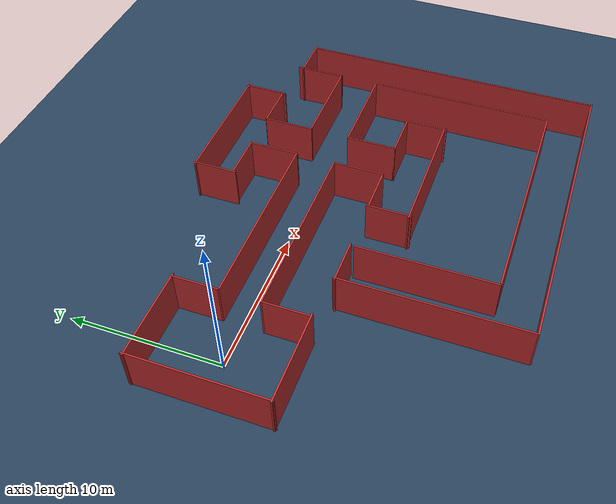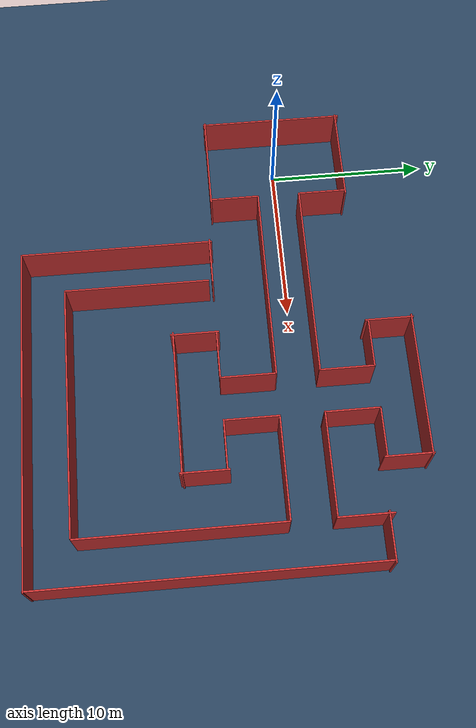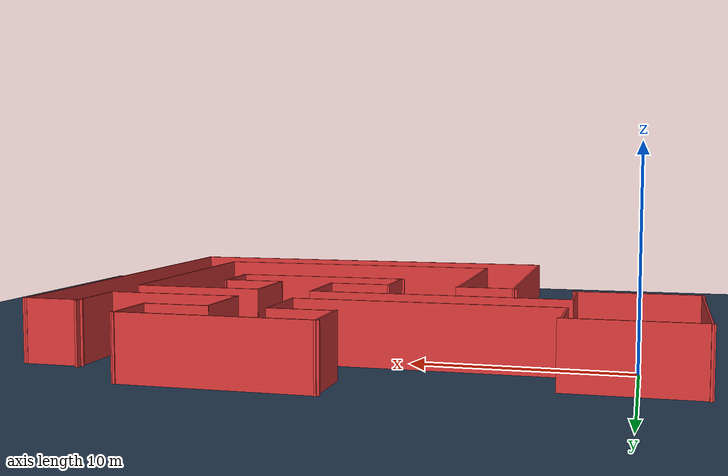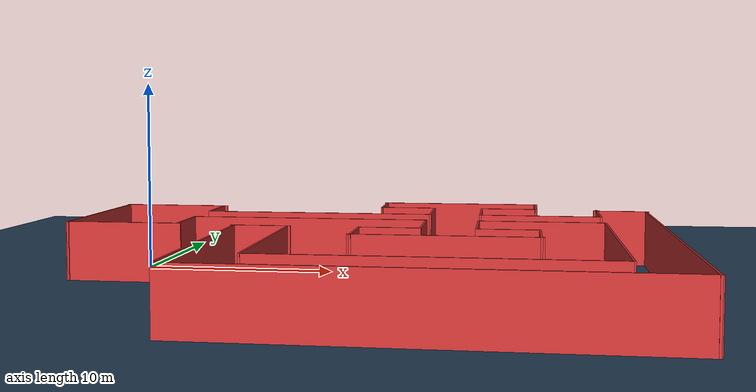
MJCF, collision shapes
<mujoco model="go2 scene">
  <include file="go2.xml" />
  <statistic center="0 0 0.1" extent="0.8" />
  <visual>
    <headlight diffuse="0.6 0.6 0.6" ambient="0.3 0.3 0.3" specular="0 0 0" />
    <rgba haze="0.15 0.25 0.35 1" />
    <global azimuth="-130" elevation="-20" />
    <map znear="0.01" zfar="100"/>
  </visual>
  <asset>
    <texture type="skybox" builtin="gradient" rgb1="0.3 0.5 0.7" rgb2="0 0 0" width="512" height="3072" />
    <texture type="2d" name="groundplane" builtin="checker" mark="edge" rgb1="0.2 0.3 0.4" rgb2="0.1 0.2 0.3" markrgb="0.8 0.8 0.8" width="300" height="300" />
    <material name="groundplane" texture="groundplane" texuniform="true" texrepeat="5 5" reflectance="0.2" />
</asset>
  <worldbody>
    <light pos="0 0 1.5" dir="0 0 -1" directional="true" />
    <geom name="floor" pos="0 0.0 0.01" size="0 0 0.01" type="plane" material="groundplane" />
<geom name="phs_Cube8" type="box" size="3.15 0.05 1.5" pos="20.99 1.35 1.5" quat="1.0 0.0 0.0 0.0" rgba="0.8 0.2 0.2 1" solref="0.02 1" solimp="0.9 0.95 0.001"/>
<geom name="phs_Cube9" type="box" size="3.15 0.05 1.5" pos="20.99 -1.35 1.5" quat="1.0 0.0 0.0 0.0" rgba="0.8 0.2 0.2 1" solref="0.02 1" solimp="0.9 0.95 0.001"/>
<geom name="phs_Cube10" type="box" size="1.5 0.05 1.5" pos="19.29 4.66 1.5" quat="1.0 0.0 0.0 0.0" rgba="0.8 0.2 0.2 1" solref="0.02 1" solimp="0.9 0.95 0.001"/>
<geom name="phs_Cube11" type="box" size="1.5 0.05 1.5" pos="13.69 4.66 1.5" quat="1.0 0.0 0.0 0.0" rgba="0.8 0.2 0.2 1" solref="0.02 1" solimp="0.9 0.95 0.001"/>
<geom name="phs_Cube12" type="box" size="1.5 0.05 1.5" pos="13.69 -4.68 1.5" quat="1.0 0.0 0.0 0.0" rgba="0.8 0.2 0.2 1" solref="0.02 1" solimp="0.9 0.95 0.001"/>
<geom name="phs_Cube13" type="box" size="1.5 0.05 1.5" pos="19.29 -4.68 1.5" quat="1.0 0.0 0.0 0.0" rgba="0.8 0.2 0.2 1" solref="0.02 1" solimp="0.9 0.95 0.001"/>
<geom name="phs_Cube14" type="box" size="4.5 0.05 1.5" pos="16.49 7.34 1.5" quat="1.0 0.0 0.0 0.0" rgba="0.8 0.2 0.2 1" solref="0.02 1" solimp="0.9 0.95 0.001"/>
<geom name="phs_Cube15" type="box" size="4.5 0.05 1.5" pos="16.49 -7.34 1.5" quat="1.0 0.0 0.0 0.0" rgba="0.8 0.2 0.2 1" solref="0.02 1" solimp="0.9 0.95 0.001"/>
<geom name="phs_Cube16" type="box" size="1.5 0.05 1.5" pos="12.16 5.96 1.5" quat="0.707107 0.0 0.0 -0.707107" rgba="0.8 0.2 0.2 1" solref="0.02 1" solimp="0.9 0.95 0.001"/>
<geom name="phs_Cube17" type="box" size="1.5 0.05 1.5" pos="20.84 5.96 1.5" quat="0.707107 0.0 0.0 -0.707107" rgba="0.8 0.2 0.2 1" solref="0.02 1" solimp="0.9 0.95 0.001"/>
<geom name="phs_Cube18" type="box" size="1.7 0.05 1.5" pos="17.83 2.99 1.5" quat="0.707107 0.0 0.0 -0.707107" rgba="0.8 0.2 0.2 1" solref="0.02 1" solimp="0.9 0.95 0.001"/>
<geom name="phs_Cube19" type="box" size="1.7 0.05 1.5" pos="15.16 2.99 1.5" quat="0.707107 0.0 0.0 -0.707107" rgba="0.8 0.2 0.2 1" solref="0.02 1" solimp="0.9 0.95 0.001"/>
<geom name="phs_Cube20" type="box" size="1.7 0.05 1.5" pos="15.16 -3.01 1.5" quat="0.707107 0.0 0.0 -0.707107" rgba="0.8 0.2 0.2 1" solref="0.02 1" solimp="0.9 0.95 0.001"/>
<geom name="phs_Cube21" type="box" size="1.7 0.05 1.5" pos="17.84 -3.01 1.5" quat="0.707107 0.0 0.0 -0.707107" rgba="0.8 0.2 0.2 1" solref="0.02 1" solimp="0.9 0.95 0.001"/>
<geom name="phs_Cube22" type="box" size="1.5 0.05 1.5" pos="20.84 -6.01 1.5" quat="0.707107 0.0 0.0 -0.707107" rgba="0.8 0.2 0.2 1" solref="0.02 1" solimp="0.9 0.95 0.001"/>
<geom name="phs_Cube23" type="box" size="1.5 0.05 1.5" pos="12.16 -6.01 1.5" quat="0.707107 0.0 0.0 -0.707107" rgba="0.8 0.2 0.2 1" solref="0.02 1" solimp="0.9 0.95 0.001"/>
<geom name="phs_Cube24" type="box" size="1.7 0.05 1.5" pos="24.16 2.99 1.5" quat="0.707107 0.0 0.0 -0.707107" rgba="0.8 0.2 0.2 1" solref="0.02 1" solimp="0.9 0.95 0.001"/>
<geom name="phs_Cube25" type="box" size="1.5 0.05 1.5" pos="25.49 4.33 1.5" quat="1.0 0.0 0.0 0.0" rgba="0.8 0.2 0.2 1" solref="0.02 1" solimp="0.9 0.95 0.001"/>
<geom name="phs_Cube26" type="box" size="10.5 0.05 1.5" pos="26.83 -6.11 1.5" quat="0.707107 0.0 0.0 -0.707107" rgba="0.8 0.2 0.2 1" solref="0.02 1" solimp="0.9 0.95 0.001"/>
<geom name="phs_Cube27" type="box" size="6.25 0.05 1.5" pos="24.16 -7.61 1.5" quat="0.707107 0.0 0.0 -0.707107" rgba="0.8 0.2 0.2 1" solref="0.02 1" solimp="0.9 0.95 0.001"/>
<geom name="phs_Cube" type="box" size="6.15 0.05 1.5" pos="9.04 -1.3 1.5" quat="1.0 0.0 0.0 0.0" rgba="0.8 0.2 0.2 1" solref="0.02 1" solimp="0.9 0.95 0.001"/>
<geom name="phs_Cube28" type="box" size="10.5 0.05 1.5" pos="16.43 -16.54 1.5" quat="0.0 0.0 0.0 -1.0" rgba="0.8 0.2 0.2 1" solref="0.02 1" solimp="0.9 0.95 0.001"/>
<geom name="phs_Cube29" type="box" size="7.7 0.05 1.5" pos="16.43 -13.86 1.5" quat="0.0 0.0 0.0 -1.0" rgba="0.8 0.2 0.2 1" solref="0.02 1" solimp="0.9 0.95 0.001"/>
<geom name="phs_Cube30" type="box" size="6.0 0.05 1.5" pos="5.96 -10.51 1.5" quat="0.707107 0.0 0.0 -0.707107" rgba="0.8 0.2 0.2 1" solref="0.02 1" solimp="0.9 0.95 0.001"/>
<geom name="phs_Cube31" type="box" size="4.5 0.05 1.5" pos="8.66 -9.39 1.5" quat="0.707107 0.0 0.0 -0.707107" rgba="0.8 0.2 0.2 1" solref="0.02 1" solimp="0.9 0.95 0.001"/>
<geom name="phs_Cube32" type="box" size="1.5 0.05 1.5" pos="7.29 -4.66 1.5" quat="1.0 0.0 0.0 0.0" rgba="0.8 0.2 0.2 1" solref="0.02 1" solimp="0.9 0.95 0.001"/>
<geom name="phs_Cube2" type="box" size="6.15 0.05 1.5" pos="9.04 1.35 1.5" quat="1.0 0.0 0.0 0.0" rgba="0.8 0.2 0.2 1" solref="0.02 1" solimp="0.9 0.95 0.001"/>
<geom name="phs_Cube3" type="box" size="3.0 0.05 1.5" pos="0.14 -4.34 1.5" quat="1.0 0.0 0.0 0.0" rgba="0.8 0.2 0.2 1" solref="0.02 1" solimp="0.9 0.95 0.001"/>
<geom name="phs_Cube4" type="box" size="3.0 0.05 1.5" pos="0.14 4.35 1.5" quat="1.0 0.0 0.0 0.0" rgba="0.8 0.2 0.2 1" solref="0.02 1" solimp="0.9 0.95 0.001"/>
<geom name="phs_Cube5" type="box" size="4.5 0.05 1.5" pos="-2.74 0.05 1.5" quat="0.707107 0.0 0.0 0.707107" rgba="0.8 0.2 0.2 1" solref="0.02 1" solimp="0.9 0.95 0.001"/>
<geom name="phs_Cube6" type="box" size="1.5 0.05 1.5" pos="2.94 2.85 1.5" quat="0.707107 0.0 0.0 0.707107" rgba="0.8 0.2 0.2 1" solref="0.02 1" solimp="0.9 0.95 0.001"/>
<geom name="phs_Cube7" type="box" size="1.5 0.05 1.5" pos="2.94 -2.85 1.5" quat="0.707107 0.0 0.0 0.707107" rgba="0.8 0.2 0.2 1" solref="0.02 1" solimp="0.9 0.95 0.001"/>
    </worldbody>
</mujoco>

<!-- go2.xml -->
<mujoco model="go2">
  <compiler angle="radian" meshdir="assets" autolimits="true" />

  <option cone="elliptic" impratio="100" />

  <default>
    <default class="go2">
      <geom friction="0.4" margin="0.001" condim="1"/>
      <joint axis="0 1 0" damping="0.1" armature="0.01" frictionloss="0.2"/>
      <motor ctrlrange="-23.7 23.7"/>
      <default class="abduction">
        <joint axis="1 0 0" range="-1.0472 1.0472"/>
      </default>
      <default class="hip">
        <default class="front_hip">
          <joint range="-1.5708 3.4907"/>
        </default>
        <default class="back_hip">
          <joint range="-0.5236 4.5379"/>
        </default>
      </default>
      <default class="knee">
        <joint range="-2.7227 -0.83776"/>
        <motor ctrlrange="-45.43 45.43"/>
      </default>
      <default class="visual">
        <geom type="mesh" contype="0" conaffinity="0" group="2"/>
      </default>
      <default class="collision">
        <geom group="3"/>
        <default class="foot">
          <geom size="0.022" pos="-0.002 0 -0.213" priority="1" condim="6"
            friction="0.4 0.02 0.01"/>
        </default>
      </default>
    </default>
  </default>

  <asset>
    <material name="metal" rgba=".9 .95 .95 1" />
    <material name="black" rgba="0 0 0 1" />
    <material name="white" rgba="1 1 1 1" />
    <material name="gray" rgba="0.671705 0.692426 0.774270 1" />

    <mesh file="base_0.obj" />
    <mesh file="base_1.obj" />
    <mesh file="base_2.obj" />
    <mesh file="base_3.obj" />
    <mesh file="base_4.obj" />
    <mesh file="hip_0.obj" />
    <mesh file="hip_1.obj" />
    <mesh file="thigh_0.obj" />
    <mesh file="thigh_1.obj" />
    <mesh file="thigh_mirror_0.obj" />
    <mesh file="thigh_mirror_1.obj" />
    <mesh file="calf_0.obj" />
    <mesh file="calf_1.obj" />
    <mesh file="calf_mirror_0.obj" />
    <mesh file="calf_mirror_1.obj" />
    <mesh file="foot.obj" />
  </asset>

  <worldbody>
    <body name="base_link" pos="0 0 0.445" childclass="go2">
      <inertial pos="0.021112 0 -0.005366" quat="-0.000543471 0.713435 -0.00173769 0.700719"
        mass="6.921"
        diaginertia="0.107027 0.0980771 0.0244531" />
      <freejoint />
      <geom mesh="base_0" material="black" class="visual" />
      <geom mesh="base_1" material="black" class="visual" />
      <geom mesh="base_2" material="black" class="visual" />
      <geom mesh="base_3" material="white" class="visual" />
      <geom mesh="base_4" material="gray" class="visual" />
      <geom size="0.1881 0.04675 0.057" type="box" class="collision" />
      <geom size="0.05 0.045" pos="0.285 0 0.01" type="cylinder" class="collision" />
      <geom size="0.047" pos="0.293 0 -0.06" class="collision" />
      <site name="imu" pos="-0.02557 0 0.04232" />

      <body name="FL_hip" pos="0.1934 0.0465 0">
        <inertial pos="-0.0054 0.00194 -0.000105" quat="0.497014 0.499245 0.505462 0.498237"
          mass="0.678"
          diaginertia="0.00088403 0.000596003 0.000479967" />
        <joint name="FL_hip_joint" class="abduction" />
        <geom mesh="hip_0" material="metal" class="visual" />
        <geom mesh="hip_1" material="gray" class="visual" />
        <geom size="0.046 0.02" pos="0 0.08 0" quat="1 1 0 0" type="cylinder" class="collision" />
        <body name="FL_thigh" pos="0 0.0955 0">
          <inertial pos="-0.00374 -0.0223 -0.0327" quat="0.829533 0.0847635 -0.0200632 0.551623"
            mass="1.152"
            diaginertia="0.00594973 0.00584149 0.000878787" />
          <joint name="FL_thigh_joint" class="front_hip" />
          <geom mesh="thigh_0" material="metal" class="visual" />
          <geom mesh="thigh_1" material="gray" class="visual" />
          <geom size="0.1065 0.01225 0.017" pos="0 0 -0.1065" quat="0.707107 0 0.707107 0"
            type="box" class="collision" />
          <body name="FL_calf" pos="0 0 -0.213">
            <inertial pos="0.00629595 -0.000622121 -0.141417"
              quat="0.710672 0.00154099 -0.00450087 0.703508"
              mass="0.241352" diaginertia="0.0014901 0.00146356 5.31397e-05" />
            <joint name="FL_calf_joint" class="knee" />
            <geom mesh="calf_0" material="gray" class="visual" />
            <geom mesh="calf_1" material="black" class="visual" />
            <geom size="0.012 0.06" pos="0.008 0 -0.06" quat="0.994493 0 -0.104807 0"
              type="cylinder" class="collision" />
            <geom size="0.011 0.0325" pos="0.02 0 -0.148" quat="0.999688 0 0.0249974 0"
              type="cylinder" class="collision" />
            <geom pos="0 0 -0.213" mesh="foot" class="visual" material="black" />
            <geom name="FL" class="foot" />
            <body name="FL_foot" pos="0 0 -0.213" />
          </body>
        </body>
      </body>
      <body name="FR_hip" pos="0.1934 -0.0465 0">
        <inertial pos="-0.0054 -0.00194 -0.000105" quat="0.498237 0.505462 0.499245 0.497014"
          mass="0.678"
          diaginertia="0.00088403 0.000596003 0.000479967" />
        <joint name="FR_hip_joint" class="abduction" />
        <geom mesh="hip_0" material="metal" class="visual" quat="4.63268e-05 1 0 0" />
        <geom mesh="hip_1" material="gray" class="visual" quat="4.63268e-05 1 0 0" />
        <geom size="0.046 0.02" pos="0 -0.08 0" quat="0.707107 0.707107 0 0" type="cylinder"
          class="collision" />
        <body name="FR_thigh" pos="0 -0.0955 0">
          <inertial pos="-0.00374 0.0223 -0.0327" quat="0.551623 -0.0200632 0.0847635 0.829533"
            mass="1.152"
            diaginertia="0.00594973 0.00584149 0.000878787" />
          <joint name="FR_thigh_joint" class="front_hip" />
          <geom mesh="thigh_mirror_0" material="metal" class="visual" />
          <geom mesh="thigh_mirror_1" material="gray" class="visual" />
          <geom size="0.1065 0.01225 0.017" pos="0 0 -0.1065" quat="0.707107 0 0.707107 0"
            type="box" class="collision" />
          <body name="FR_calf" pos="0 0 -0.213">
            <inertial pos="0.00629595 0.000622121 -0.141417"
              quat="0.703508 -0.00450087 0.00154099 0.710672"
              mass="0.241352" diaginertia="0.0014901 0.00146356 5.31397e-05" />
            <joint name="FR_calf_joint" class="knee" />
            <geom mesh="calf_mirror_0" material="gray" class="visual" />
            <geom mesh="calf_mirror_1" material="black" class="visual" />
            <geom size="0.013 0.06" pos="0.01 0 -0.06" quat="0.995004 0 -0.0998334 0"
              type="cylinder" class="collision" />
            <geom size="0.011 0.0325" pos="0.02 0 -0.148" quat="0.999688 0 0.0249974 0"
              type="cylinder" class="collision" />
            <geom pos="0 0 -0.213" mesh="foot" class="visual" material="black" />
            <geom name="FR" class="foot" />
            <body name="FR_foot" pos="0 0 -0.213" />
          </body>
        </body>
      </body>
      <body name="RL_hip" pos="-0.1934 0.0465 0">
        <inertial pos="0.0054 0.00194 -0.000105" quat="0.505462 0.498237 0.497014 0.499245"
          mass="0.678"
          diaginertia="0.00088403 0.000596003 0.000479967" />
        <joint name="RL_hip_joint" class="abduction" />
        <geom mesh="hip_0" material="metal" class="visual" quat="4.63268e-05 0 1 0" />
        <geom mesh="hip_1" material="gray" class="visual" quat="4.63268e-05 0 1 0" />
        <geom size="0.046 0.02" pos="0 0.08 0" quat="0.707107 0.707107 0 0" type="cylinder"
          class="collision" />
        <body name="RL_thigh" pos="0 0.0955 0">
          <inertial pos="-0.00374 -0.0223 -0.0327" quat="0.829533 0.0847635 -0.0200632 0.551623"
            mass="1.152"
            diaginertia="0.00594973 0.00584149 0.000878787" />
          <joint name="RL_thigh_joint" class="back_hip" />
          <geom mesh="thigh_0" material="metal" class="visual" />
          <geom mesh="thigh_1" material="gray" class="visual" />
          <geom size="0.1065 0.01225 0.017" pos="0 0 -0.1065" quat="0.707107 0 0.707107 0"
            type="box" class="collision" />
          <body name="RL_calf" pos="0 0 -0.213">
            <inertial pos="0.00629595 -0.000622121 -0.141417"
              quat="0.710672 0.00154099 -0.00450087 0.703508"
              mass="0.241352" diaginertia="0.0014901 0.00146356 5.31397e-05" />
            <joint name="RL_calf_joint" class="knee" />
            <geom mesh="calf_0" material="gray" class="visual" />
            <geom mesh="calf_1" material="black" class="visual" />
            <geom size="0.013 0.06" pos="0.01 0 -0.06" quat="0.995004 0 -0.0998334 0"
              type="cylinder" class="collision" />
            <geom size="0.011 0.0325" pos="0.02 0 -0.148" quat="0.999688 0 0.0249974 0"
              type="cylinder" class="collision" />
            <geom pos="0 0 -0.213" mesh="foot" class="visual" material="black" />
            <geom name="RL" class="foot" />
            <body name="RL_foot" pos="0 0 -0.213" />
          </body>
        </body>
      </body>
      <body name="RR_hip" pos="-0.1934 -0.0465 0">
        <inertial pos="0.0054 -0.00194 -0.000105" quat="0.499245 0.497014 0.498237 0.505462"
          mass="0.678"
          diaginertia="0.00088403 0.000596003 0.000479967" />
        <joint name="RR_hip_joint" class="abduction" />
        <geom mesh="hip_0" material="metal" class="visual"
          quat="2.14617e-09 4.63268e-05 4.63268e-05 -1" />
        <geom mesh="hip_1" material="gray" class="visual"
          quat="2.14617e-09 4.63268e-05 4.63268e-05 -1" />
        <geom size="0.046 0.02" pos="0 -0.08 0" quat="0.707107 0.707107 0 0" type="cylinder"
          class="collision" />
        <body name="RR_thigh" pos="0 -0.0955 0">
          <inertial pos="-0.00374 0.0223 -0.0327" quat="0.551623 -0.0200632 0.0847635 0.829533"
            mass="1.152"
            diaginertia="0.00594973 0.00584149 0.000878787" />
          <joint name="RR_thigh_joint" class="back_hip" />
          <geom mesh="thigh_mirror_0" material="metal" class="visual" />
          <geom mesh="thigh_mirror_1" material="gray" class="visual" />
          <geom size="0.1065 0.01225 0.017" pos="0 0 -0.1065" quat="0.707107 0 0.707107 0"
            type="box" class="collision" />
          <body name="RR_calf" pos="0 0 -0.213">
            <inertial pos="0.00629595 0.000622121 -0.141417"
              quat="0.703508 -0.00450087 0.00154099 0.710672"
              mass="0.241352" diaginertia="0.0014901 0.00146356 5.31397e-05" />
            <joint name="RR_calf_joint" class="knee" />
            <geom mesh="calf_mirror_0" material="gray" class="visual" />
            <geom mesh="calf_mirror_1" material="black" class="visual" />
            <geom size="0.013 0.06" pos="0.01 0 -0.06" quat="0.995004 0 -0.0998334 0"
              type="cylinder" class="collision" />
            <geom size="0.011 0.0325" pos="0.02 0 -0.148" quat="0.999688 0 0.0249974 0"
              type="cylinder" class="collision" />
            <geom pos="0 0 -0.213" mesh="foot" class="visual" material="black" />
            <geom name="RR" class="foot" />
            <body name="RR_foot" pos="0 0 -0.213" />
          </body>
        </body>
      </body>
    </body>
  </worldbody>

  <actuator>
    <motor class="abduction" name="FR_hip" joint="FR_hip_joint" />
    <motor class="hip" name="FR_thigh" joint="FR_thigh_joint" />
    <motor class="knee" name="FR_calf" joint="FR_calf_joint" />
    <motor class="abduction" name="FL_hip" joint="FL_hip_joint" />
    <motor class="hip" name="FL_thigh" joint="FL_thigh_joint" />
    <motor class="knee" name="FL_calf" joint="FL_calf_joint" />
    <motor class="abduction" name="RR_hip" joint="RR_hip_joint" />
    <motor class="hip" name="RR_thigh" joint="RR_thigh_joint" />
    <motor class="knee" name="RR_calf" joint="RR_calf_joint" />
    <motor class="abduction" name="RL_hip" joint="RL_hip_joint" />
    <motor class="hip" name="RL_thigh" joint="RL_thigh_joint" />
    <motor class="knee" name="RL_calf" joint="RL_calf_joint" />
  </actuator>

  <sensor>
    <jointpos name="FR_hip_pos" joint="FR_hip_joint" />
    <jointpos name="FR_thigh_pos" joint="FR_thigh_joint" />
    <jointpos name="FR_calf_pos" joint="FR_calf_joint" />
    <jointpos name="FL_hip_pos" joint="FL_hip_joint" />
    <jointpos name="FL_thigh_pos" joint="FL_thigh_joint" />
    <jointpos name="FL_calf_pos" joint="FL_calf_joint" />
    <jointpos name="RR_hip_pos" joint="RR_hip_joint" />
    <jointpos name="RR_thigh_pos" joint="RR_thigh_joint" />
    <jointpos name="RR_calf_pos" joint="RR_calf_joint" />
    <jointpos name="RL_hip_pos" joint="RL_hip_joint" />
    <jointpos name="RL_thigh_pos" joint="RL_thigh_joint" />
    <jointpos name="RL_calf_pos" joint="RL_calf_joint" />

    <jointvel name="FR_hip_vel" joint="FR_hip_joint" />
    <jointvel name="FR_thigh_vel" joint="FR_thigh_joint" />
    <jointvel name="FR_calf_vel" joint="FR_calf_joint" />
    <jointvel name="FL_hip_vel" joint="FL_hip_joint" />
    <jointvel name="FL_thigh_vel" joint="FL_thigh_joint" />
    <jointvel name="FL_calf_vel" joint="FL_calf_joint" />
    <jointvel name="RR_hip_vel" joint="RR_hip_joint" />
    <jointvel name="RR_thigh_vel" joint="RR_thigh_joint" />
    <jointvel name="RR_calf_vel" joint="RR_calf_joint" />
    <jointvel name="RL_hip_vel" joint="RL_hip_joint" />
    <jointvel name="RL_thigh_vel" joint="RL_thigh_joint" />
    <jointvel name="RL_calf_vel" joint="RL_calf_joint" />

    <jointactuatorfrc name="FR_hip_torque" joint="FR_hip_joint" noise="0.01" />
    <jointactuatorfrc name="FR_thigh_torque" joint="FR_thigh_joint" noise="0.01" />
    <jointactuatorfrc name="FR_calf_torque" joint="FR_calf_joint" noise="0.01" />
    <jointactuatorfrc name="FL_hip_torque" joint="FL_hip_joint" noise="0.01" />
    <jointactuatorfrc name="FL_thigh_torque" joint="FL_thigh_joint" noise="0.01" />
    <jointactuatorfrc name="FL_calf_torque" joint="FL_calf_joint" noise="0.01" />
    <jointactuatorfrc name="RR_hip_torque" joint="RR_hip_joint" noise="0.01" />
    <jointactuatorfrc name="RR_thigh_torque" joint="RR_thigh_joint" noise="0.01" />
    <jointactuatorfrc name="RR_calf_torque" joint="RR_calf_joint" noise="0.01" />
    <jointactuatorfrc name="RL_hip_torque" joint="RL_hip_joint" noise="0.01" />
    <jointactuatorfrc name="RL_thigh_torque" joint="RL_thigh_joint" noise="0.01" />
    <jointactuatorfrc name="RL_calf_torque" joint="RL_calf_joint" noise="0.01" />

    <framequat name="imu_quat" objtype="site" objname="imu" />
    <gyro name="imu_gyro" site="imu" />
    <accelerometer name="imu_acc" site="imu" />

    <framepos name="frame_pos" objtype="site" objname="imu" />
    <framelinvel name="frame_vel" objtype="site" objname="imu" />
  </sensor>

  <keyframe>
    <key name="home" qpos="0 0 0.27 1 0 0 0 0 0.9 -1.8 0 0.9 -1.8 0 0.9 -1.8 0 0.9 -1.8"
      ctrl="0 0.9 -1.8 0 0.9 -1.8 0 0.9 -1.8 0 0.9 -1.8" />
  </keyframe>
</mujoco>
